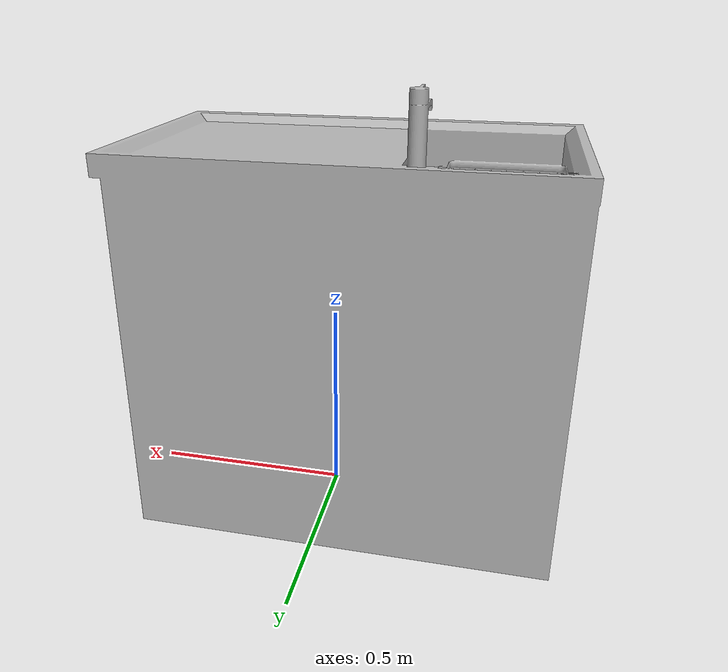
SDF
<?xml version='1.0'?>
<sdf version='1.6'>
  <model name='20_CounterWithSink'>
    <link name='body'>
	  <inertial>
        <mass>40</mass>
        <pose frame=''>0 0 0 0 0 0</pose>
        <inertia>
          <ixx>5.572333</ixx>
          <ixy>0</ixy>
          <ixz>0</ixz>
          <iyy>8.740333</iyy>
          <iyz>0</iyz>
          <izz>5.648666</izz>
        </inertia>
      </inertial>
      <pose frame=''>0 0 0 0 -0 0</pose>
      <self_collide>0</self_collide>
      <kinematic>0</kinematic>
      <gravity>1</gravity>
      <visual name='visual'>
        <geometry>
          <mesh>
            <uri>model://CounterWithSink_721b5b3c5cdc_lod0/meshes/visual_LowPoly_20_CounterWithSink.dae</uri>
          </mesh>
        </geometry>
		<meta> <layer> 1 </layer></meta>
      </visual>
      <collision name='collision_0'>
        <laser_retro>0</laser_retro>
        <max_contacts>10</max_contacts>
        <pose frame=''>0 0 0 0 -0 0</pose>
        <geometry>
          <mesh>
            <uri>model://CounterWithSink_721b5b3c5cdc_lod0/meshes/collision_20_CounterWithSink.dae</uri>
            <scale>1 1 1</scale>
          </mesh>
        </geometry>
		<surface>
          <friction>
            <ode>
              <mu>0.6</mu>
              <mu2>0.6</mu2>
              <fdir1>0 0 0</fdir1>
              <slip1>0</slip1>
              <slip2>0</slip2>
            </ode>
            <torsional>
              <coefficient>1</coefficient>
              <patch_radius>0</patch_radius>
              <surface_radius>0</surface_radius>
              <use_patch_radius>1</use_patch_radius>
              <ode>
                <slip>0</slip>
              </ode>
            </torsional>
          </friction>
        </surface>
      </collision>
    </link>
    <static>true</static>
  </model>
</sdf>
